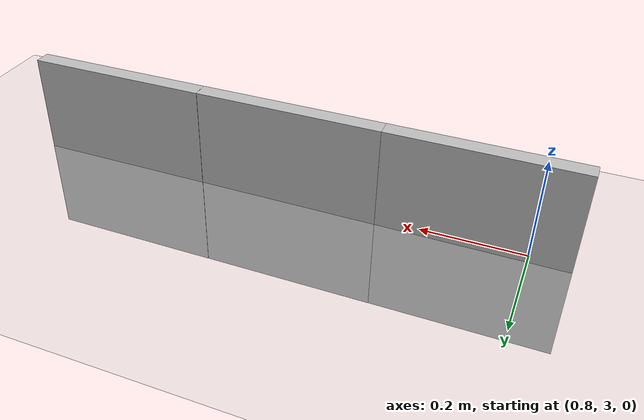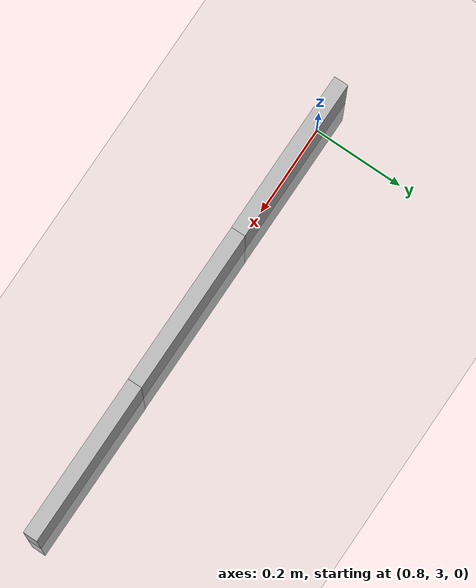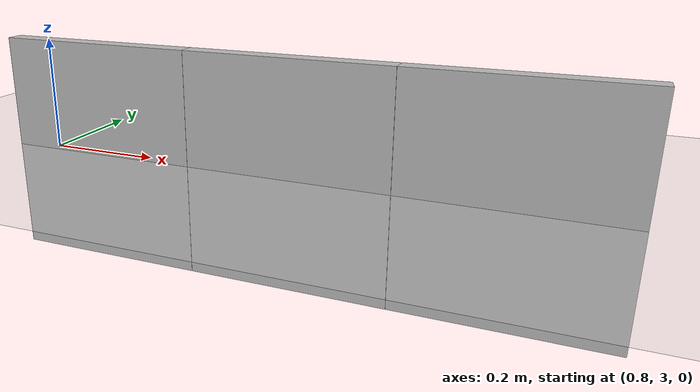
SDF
<sdf version="1.6">
 <world name="default">
  <model name="ground_plane">
   <static>1</static>
   <link name="link">
    <collision name="collision">
     <geometry><plane><normal>0 0 1</normal><size>100 100</size></plane></geometry>
     <surface>
      <contact><collide_bitmask>65535</collide_bitmask></contact>
      <friction><ode><mu>100</mu><mu2>50</mu2></ode></friction>
     </surface>
    </collision>
    <visual name="visual">
     <cast_shadows>0</cast_shadows>
     <geometry><plane><normal>0 0 1</normal><size>100 100</size></plane></geometry>
     <material>
      <script><uri>file://media/materials/scripts/gazebo.material</uri><name>Gazebo/Grey</name></script>
     </material>
    </visual>
   </link>
  </model>
  <model name="Placa02">
   <pose>0.902772 3.00005 0 0 -0 1.57</pose>
   <static>1</static>
   <link name="link">
    <collision name="collision"><geometry><box><size>0.031694 0.360886 0.40006</size></box></geometry></collision>
    <visual name="visual"><geometry><box><size>0.031694 0.360886 0.40006</size></box></geometry></visual>
   </link>
  </model>
  <model name="Placa09">
   <pose>1.62326 3.00009 0 0 -0 1.57</pose>
   <static>1</static>
   <link name="link">
    <collision name="collision"><geometry><box><size>0.031694 0.360886 0.40006</size></box></geometry></collision>
    <visual name="visual"><geometry><box><size>0.031694 0.360886 0.40006</size></box></geometry></visual>
   </link>
  </model>
  <model name="Placa10">
   <pose>1.26216 3.00007 0 0 -0 1.57</pose>
   <static>1</static>
   <link name="link">
    <collision name="collision"><geometry><box><size>0.031694 0.360886 0.40006</size></box></geometry></collision>
    <visual name="visual"><geometry><box><size>0.031694 0.360886 0.40006</size></box></geometry></visual>
   </link>
  </model>
 </world>
</sdf>
